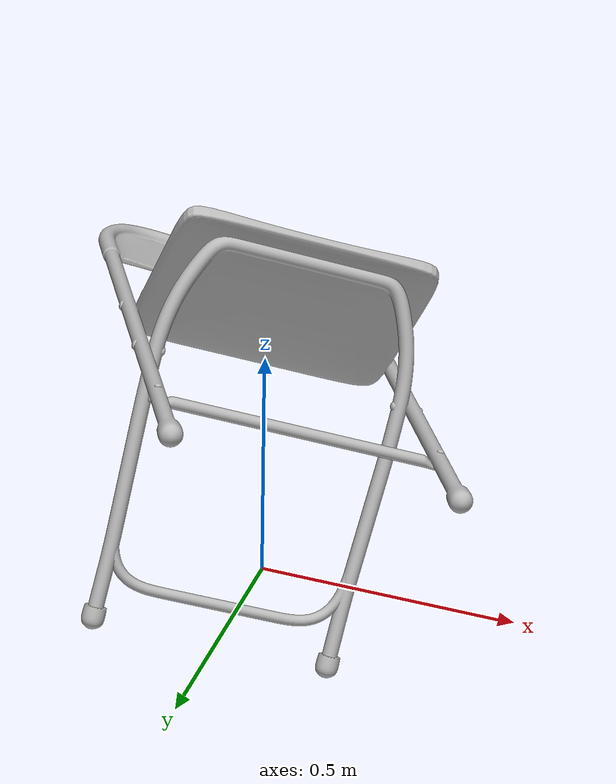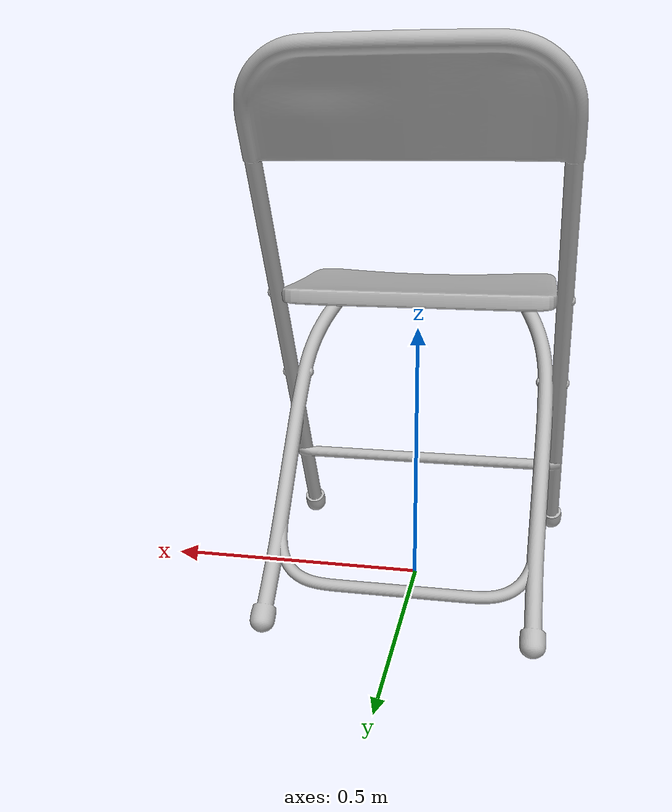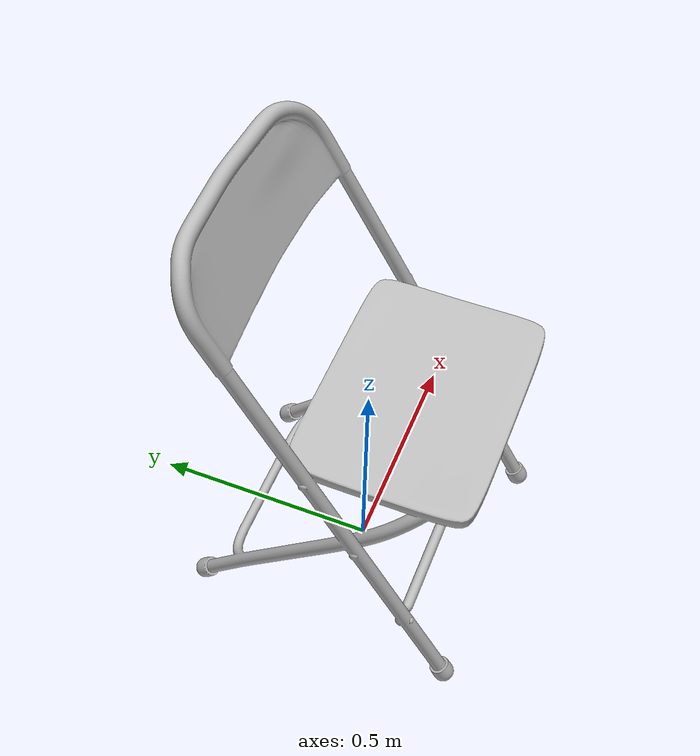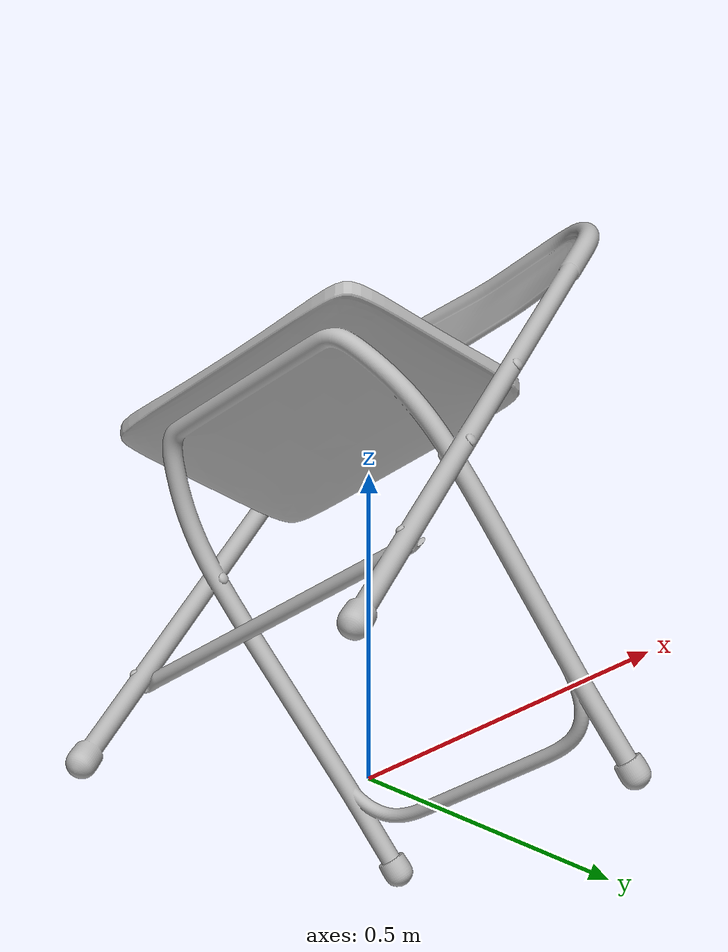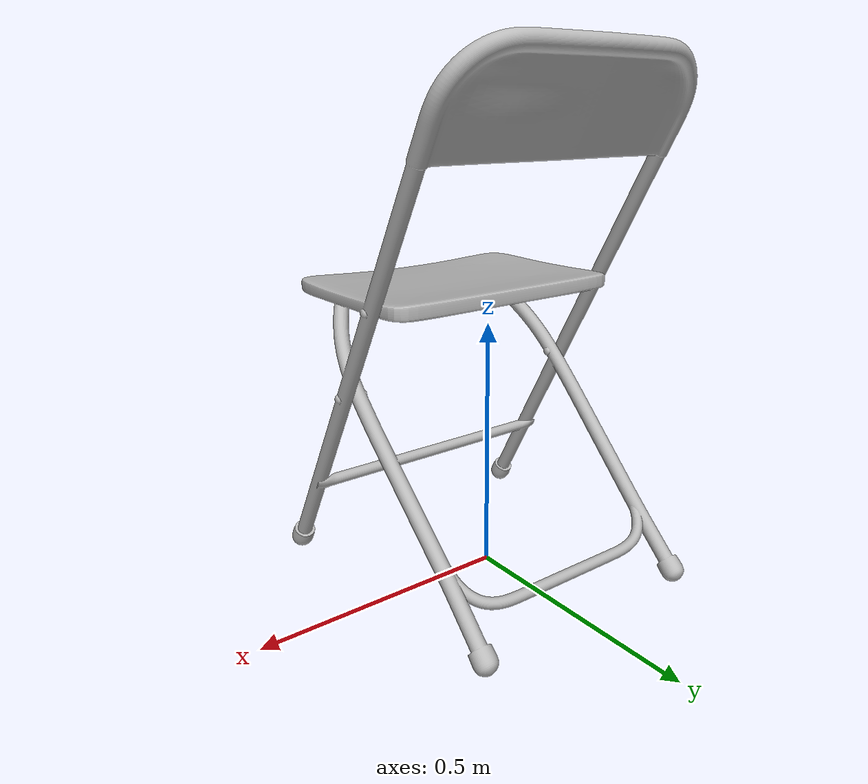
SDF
<?xml version="1.0"?>
<sdf version="1.7">
  <model name="chair">
    <static>true</static>
    <link name="link">
      <pose>0 0 0 0 0 0</pose>
      <visual name="visual">
        <geometry>
          <mesh>
            <uri>model://chair/meshes/13494_Folding_Chairs_v1_L3.obj</uri>
            <scale>0.04 0.04 0.04</scale>
          </mesh>
        </geometry>
      </visual>
      <collision name="collision">
        <pose>0 0 0.51 0 0 0</pose>
        <geometry>
          <box>
            <size>0.59 0.62 1.02</size>
          </box>
        </geometry>
      </collision>
    </link>
  </model>
</sdf>
